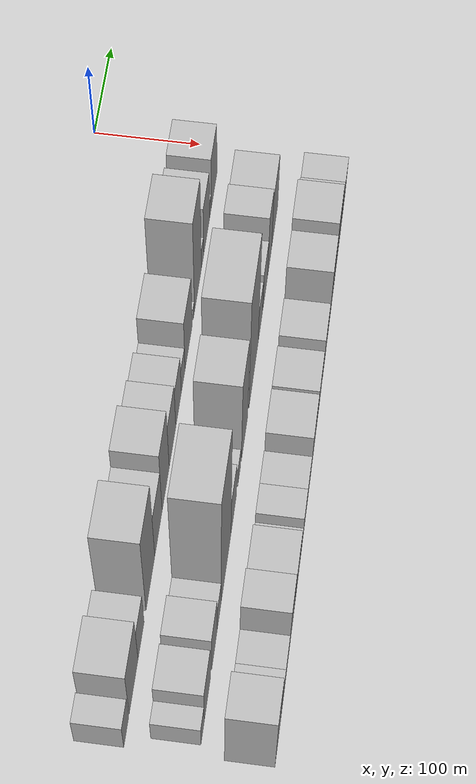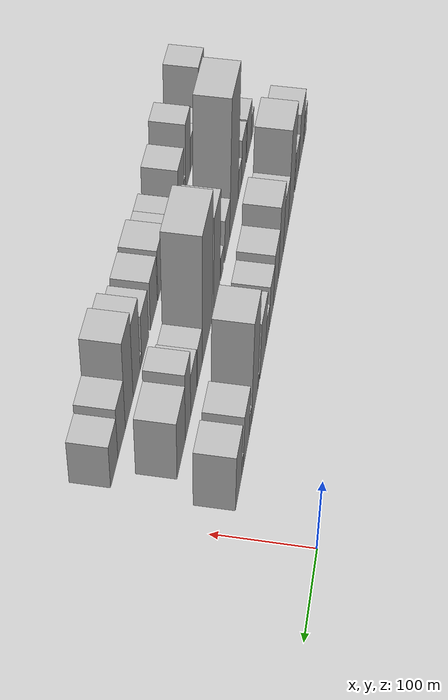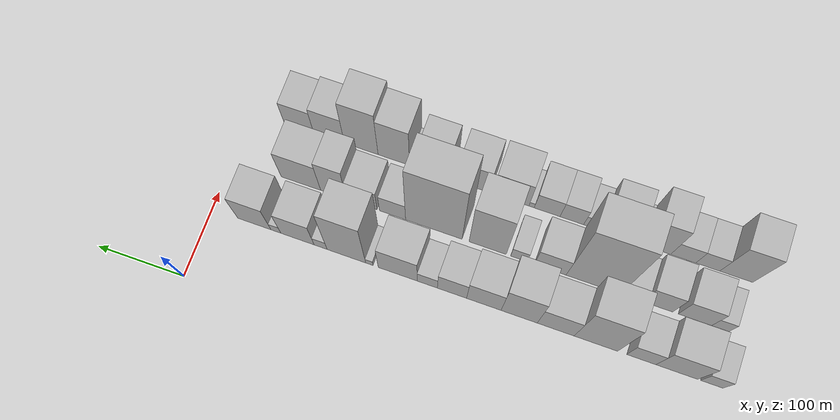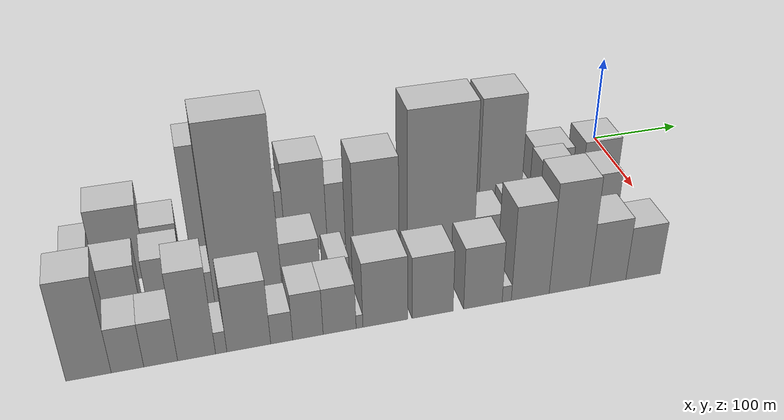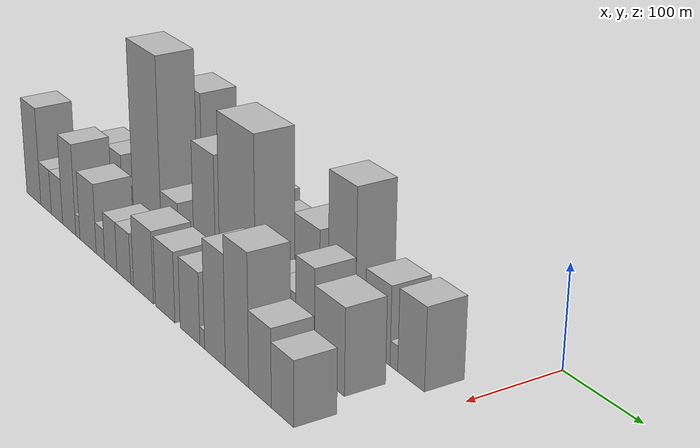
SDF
<sdf version="1.6">
 <world name="default">
  <model name="building_1">
   <static>1</static>
   <pose>100.0000 -567.7578 0 0.000000 0.000000 0.000000</pose>
   <link name="link">
    <pose>0 0 22.50 0 0 0</pose>
    <collision name="collision"><geometry><box><size>40.0000 24.4843 45.0000</size></box></geometry></collision>
    <visual name="visual">
     <cast_shadows>0</cast_shadows>
     <geometry><box><size>40.0000 24.4843 45.0000</size></box></geometry>
     <material>
      <script>
       <uri>model://HANNAS_wall/materials/scripts</uri>
       <uri>model://HANNAS_wall/materials/textures</uri>
       <name>vrc/HANNAS_wall</name>
      </script>
     </material>
    </visual>
   </link>
  </model>
  <model name="building_2">
   <static>1</static>
   <pose>100.0000 -529.5423 0 0.000000 0.000000 0.000000</pose>
   <link name="link">
    <pose>0 0 42.00 0 0 0</pose>
    <collision name="collision"><geometry><box><size>40.0000 45.9467 84.0000</size></box></geometry></collision>
    <visual name="visual">
     <cast_shadows>0</cast_shadows>
     <geometry><box><size>40.0000 45.9467 84.0000</size></box></geometry>
     <material>
      <script>
       <uri>model://HANNAS_wall/materials/scripts</uri>
       <uri>model://HANNAS_wall/materials/textures</uri>
       <name>vrc/HANNAS_wall</name>
      </script>
     </material>
    </visual>
   </link>
  </model>
  <model name="building_3">
   <static>1</static>
   <pose>100.0000 -490.5486 0 0.000000 0.000000 0.000000</pose>
   <link name="link">
    <pose>0 0 28.50 0 0 0</pose>
    <collision name="collision"><geometry><box><size>40.0000 32.0408 57.0000</size></box></geometry></collision>
    <visual name="visual">
     <cast_shadows>0</cast_shadows>
     <geometry><box><size>40.0000 32.0408 57.0000</size></box></geometry>
     <material>
      <script>
       <uri>model://HANNAS_wall/materials/scripts</uri>
       <uri>model://HANNAS_wall/materials/textures</uri>
       <name>vrc/HANNAS_wall</name>
      </script>
     </material>
    </visual>
   </link>
  </model>
  <model name="building_4">
   <static>1</static>
   <pose>100.0000 -440.3188 0 0.000000 0.000000 0.000000</pose>
   <link name="link">
    <pose>0 0 69.00 0 0 0</pose>
    <collision name="collision"><geometry><box><size>40.0000 48.4188 138.0000</size></box></geometry></collision>
    <visual name="visual">
     <cast_shadows>0</cast_shadows>
     <geometry><box><size>40.0000 48.4188 138.0000</size></box></geometry>
     <material>
      <script>
       <uri>model://HANNAS_wall/materials/scripts</uri>
       <uri>model://HANNAS_wall/materials/textures</uri>
       <name>vrc/HANNAS_wall</name>
      </script>
     </material>
    </visual>
   </link>
  </model>
  <model name="building_5">
   <static>1</static>
   <pose>100.0000 -395.4479 0 0.000000 0.000000 0.000000</pose>
   <link name="link">
    <pose>0 0 37.50 0 0 0</pose>
    <collision name="collision"><geometry><box><size>40.0000 41.3229 75.0000</size></box></geometry></collision>
    <visual name="visual">
     <cast_shadows>0</cast_shadows>
     <geometry><box><size>40.0000 41.3229 75.0000</size></box></geometry>
     <material>
      <script>
       <uri>model://HANNAS_wall/materials/scripts</uri>
       <uri>model://HANNAS_wall/materials/textures</uri>
       <name>vrc/HANNAS_wall</name>
      </script>
     </material>
    </visual>
   </link>
  </model>
  <model name="building_6">
   <static>1</static>
   <pose>100.0000 -354.4409 0 0.000000 0.000000 0.000000</pose>
   <link name="link">
    <pose>0 0 52.50 0 0 0</pose>
    <collision name="collision"><geometry><box><size>40.0000 40.6911 105.0000</size></box></geometry></collision>
    <visual name="visual">
     <cast_shadows>0</cast_shadows>
     <geometry><box><size>40.0000 40.6911 105.0000</size></box></geometry>
     <material>
      <script>
       <uri>model://HANNAS_wall/materials/scripts</uri>
       <uri>model://HANNAS_wall/materials/textures</uri>
       <name>vrc/HANNAS_wall</name>
      </script>
     </material>
    </visual>
   </link>
  </model>
  <model name="building_7">
   <static>1</static>
   <pose>100.0000 -314.5733 0 0.000000 0.000000 0.000000</pose>
   <link name="link">
    <pose>0 0 37.50 0 0 0</pose>
    <collision name="collision"><geometry><box><size>40.0000 39.0440 75.0000</size></box></geometry></collision>
    <visual name="visual">
     <cast_shadows>0</cast_shadows>
     <geometry><box><size>40.0000 39.0440 75.0000</size></box></geometry>
     <material>
      <script>
       <uri>model://HANNAS_wall/materials/scripts</uri>
       <uri>model://HANNAS_wall/materials/textures</uri>
       <name>vrc/HANNAS_wall</name>
      </script>
     </material>
    </visual>
   </link>
  </model>
  <model name="building_8">
   <static>1</static>
   <pose>100.0000 -278.4260 0 0.000000 0.000000 0.000000</pose>
   <link name="link">
    <pose>0 0 31.50 0 0 0</pose>
    <collision name="collision"><geometry><box><size>40.0000 33.2507 63.0000</size></box></geometry></collision>
    <visual name="visual">
     <cast_shadows>0</cast_shadows>
     <geometry><box><size>40.0000 33.2507 63.0000</size></box></geometry>
     <material>
      <script>
       <uri>model://HANNAS_wall/materials/scripts</uri>
       <uri>model://HANNAS_wall/materials/textures</uri>
       <name>vrc/HANNAS_wall</name>
      </script>
     </material>
    </visual>
   </link>
  </model>
  <model name="building_9">
   <static>1</static>
   <pose>100.0000 -250.2891 0 0.000000 0.000000 0.000000</pose>
   <link name="link">
    <pose>0 0 19.50 0 0 0</pose>
    <collision name="collision"><geometry><box><size>40.0000 23.0232 39.0000</size></box></geometry></collision>
    <visual name="visual">
     <cast_shadows>0</cast_shadows>
     <geometry><box><size>40.0000 23.0232 39.0000</size></box></geometry>
     <material>
      <script>
       <uri>model://HANNAS_wall/materials/scripts</uri>
       <uri>model://HANNAS_wall/materials/textures</uri>
       <name>vrc/HANNAS_wall</name>
      </script>
     </material>
    </visual>
   </link>
  </model>
  <model name="building_10">
   <static>1</static>
   <pose>100.0000 -216.4399 0 0.000000 0.000000 0.000000</pose>
   <link name="link">
    <pose>0 0 40.50 0 0 0</pose>
    <collision name="collision"><geometry><box><size>40.0000 44.6752 81.0000</size></box></geometry></collision>
    <visual name="visual">
     <cast_shadows>0</cast_shadows>
     <geometry><box><size>40.0000 44.6752 81.0000</size></box></geometry>
     <material>
      <script>
       <uri>model://HANNAS_wall/materials/scripts</uri>
       <uri>model://HANNAS_wall/materials/textures</uri>
       <name>vrc/HANNAS_wall</name>
      </script>
     </material>
    </visual>
   </link>
  </model>
  <model name="building_11">
   <static>1</static>
   <pose>100.0000 -183.8560 0 0.000000 0.000000 0.000000</pose>
   <link name="link">
    <pose>0 0 9.00 0 0 0</pose>
    <collision name="collision"><geometry><box><size>40.0000 8.4927 18.0000</size></box></geometry></collision>
    <visual name="visual">
     <cast_shadows>0</cast_shadows>
     <geometry><box><size>40.0000 8.4927 18.0000</size></box></geometry>
     <material>
      <script>
       <uri>model://HANNAS_wall/materials/scripts</uri>
       <uri>model://HANNAS_wall/materials/textures</uri>
       <name>vrc/HANNAS_wall</name>
      </script>
     </material>
    </visual>
   </link>
  </model>
  <model name="building_12">
   <static>1</static>
   <pose>100.0000 -157.3090 0 0.000000 0.000000 0.000000</pose>
   <link name="link">
    <pose>0 0 72.00 0 0 0</pose>
    <collision name="collision"><geometry><box><size>40.0000 44.6012 144.0000</size></box></geometry></collision>
    <visual name="visual">
     <cast_shadows>0</cast_shadows>
     <geometry><box><size>40.0000 44.6012 144.0000</size></box></geometry>
     <material>
      <script>
       <uri>model://HANNAS_wall/materials/scripts</uri>
       <uri>model://HANNAS_wall/materials/textures</uri>
       <name>vrc/HANNAS_wall</name>
      </script>
     </material>
    </visual>
   </link>
  </model>
  <model name="building_13">
   <static>1</static>
   <pose>100.0000 -127.4432 0 0.000000 0.000000 0.000000</pose>
   <link name="link">
    <pose>0 0 15.00 0 0 0</pose>
    <collision name="collision"><geometry><box><size>40.0000 15.1304 30.0000</size></box></geometry></collision>
    <visual name="visual">
     <cast_shadows>0</cast_shadows>
     <geometry><box><size>40.0000 15.1304 30.0000</size></box></geometry>
     <material>
      <script>
       <uri>model://HANNAS_wall/materials/scripts</uri>
       <uri>model://HANNAS_wall/materials/textures</uri>
       <name>vrc/HANNAS_wall</name>
      </script>
     </material>
    </visual>
   </link>
  </model>
  <model name="building_14">
   <static>1</static>
   <pose>100.0000 -100.4340 0 0.000000 0.000000 0.000000</pose>
   <link name="link">
    <pose>0 0 37.50 0 0 0</pose>
    <collision name="collision"><geometry><box><size>40.0000 38.8878 75.0000</size></box></geometry></collision>
    <visual name="visual">
     <cast_shadows>0</cast_shadows>
     <geometry><box><size>40.0000 38.8878 75.0000</size></box></geometry>
     <material>
      <script>
       <uri>model://HANNAS_wall/materials/scripts</uri>
       <uri>model://HANNAS_wall/materials/textures</uri>
       <name>vrc/HANNAS_wall</name>
      </script>
     </material>
    </visual>
   </link>
  </model>
  <model name="building_15">
   <static>1</static>
   <pose>100.0000 -75.2105 0 0.000000 0.000000 0.000000</pose>
   <link name="link">
    <pose>0 0 12.00 0 0 0</pose>
    <collision name="collision"><geometry><box><size>40.0000 11.5592 24.0000</size></box></geometry></collision>
    <visual name="visual">
     <cast_shadows>0</cast_shadows>
     <geometry><box><size>40.0000 11.5592 24.0000</size></box></geometry>
     <material>
      <script>
       <uri>model://HANNAS_wall/materials/scripts</uri>
       <uri>model://HANNAS_wall/materials/textures</uri>
       <name>vrc/HANNAS_wall</name>
      </script>
     </material>
    </visual>
   </link>
  </model>
  <model name="building_16">
   <static>1</static>
   <pose>100.0000 -49.8729 0 0.000000 0.000000 0.000000</pose>
   <link name="link">
    <pose>0 0 39.00 0 0 0</pose>
    <collision name="collision"><geometry><box><size>40.0000 39.1161 78.0000</size></box></geometry></collision>
    <visual name="visual">
     <cast_shadows>0</cast_shadows>
     <geometry><box><size>40.0000 39.1161 78.0000</size></box></geometry>
     <material>
      <script>
       <uri>model://HANNAS_wall/materials/scripts</uri>
       <uri>model://HANNAS_wall/materials/textures</uri>
       <name>vrc/HANNAS_wall</name>
      </script>
     </material>
    </visual>
   </link>
  </model>
  <model name="building_33">
   <static>1</static>
   <pose>160.0000 -560.4927 0 0.000000 0.000000 0.000000</pose>
   <link name="link">
    <pose>0 0 18.00 0 0 0</pose>
    <collision name="collision"><geometry><box><size>40.0000 19.0145 36.0000</size></box></geometry></collision>
    <visual name="visual">
     <cast_shadows>0</cast_shadows>
     <geometry><box><size>40.0000 19.0145 36.0000</size></box></geometry>
     <material>
      <script>
       <uri>model://HANNAS_wall/materials/scripts</uri>
       <uri>model://HANNAS_wall/materials/textures</uri>
       <name>vrc/HANNAS_wall</name>
      </script>
     </material>
    </visual>
   </link>
  </model>
  <model name="building_34">
   <static>1</static>
   <pose>160.0000 -532.4048 0 0.000000 0.000000 0.000000</pose>
   <link name="link">
    <pose>0 0 31.50 0 0 0</pose>
    <collision name="collision"><geometry><box><size>40.0000 37.1614 63.0000</size></box></geometry></collision>
    <visual name="visual">
     <cast_shadows>0</cast_shadows>
     <geometry><box><size>40.0000 37.1614 63.0000</size></box></geometry>
     <material>
      <script>
       <uri>model://HANNAS_wall/materials/scripts</uri>
       <uri>model://HANNAS_wall/materials/textures</uri>
       <name>vrc/HANNAS_wall</name>
      </script>
     </material>
    </visual>
   </link>
  </model>
  <model name="building_35">
   <static>1</static>
   <pose>160.0000 -491.1633 0 0.000000 0.000000 0.000000</pose>
   <link name="link">
    <pose>0 0 33.00 0 0 0</pose>
    <collision name="collision"><geometry><box><size>40.0000 33.3217 66.0000</size></box></geometry></collision>
    <visual name="visual">
     <cast_shadows>0</cast_shadows>
     <geometry><box><size>40.0000 33.3217 66.0000</size></box></geometry>
     <material>
      <script>
       <uri>model://HANNAS_wall/materials/scripts</uri>
       <uri>model://HANNAS_wall/materials/textures</uri>
       <name>vrc/HANNAS_wall</name>
      </script>
     </material>
    </visual>
   </link>
  </model>
  <model name="building_36">
   <static>1</static>
   <pose>160.0000 -461.9633 0 0.000000 0.000000 0.000000</pose>
   <link name="link">
    <pose>0 0 21.00 0 0 0</pose>
    <collision name="collision"><geometry><box><size>40.0000 25.0782 42.0000</size></box></geometry></collision>
    <visual name="visual">
     <cast_shadows>0</cast_shadows>
     <geometry><box><size>40.0000 25.0782 42.0000</size></box></geometry>
     <material>
      <script>
       <uri>model://HANNAS_wall/materials/scripts</uri>
       <uri>model://HANNAS_wall/materials/textures</uri>
       <name>vrc/HANNAS_wall</name>
      </script>
     </material>
    </visual>
   </link>
  </model>
  <model name="building_37">
   <static>1</static>
   <pose>160.0000 -418.6511 0 0.000000 0.000000 0.000000</pose>
   <link name="link">
    <pose>0 0 97.50 0 0 0</pose>
    <collision name="collision"><geometry><box><size>40.0000 61.5463 195.0000</size></box></geometry></collision>
    <visual name="visual">
     <cast_shadows>0</cast_shadows>
     <geometry><box><size>40.0000 61.5463 195.0000</size></box></geometry>
     <material>
      <script>
       <uri>model://HANNAS_wall/materials/scripts</uri>
       <uri>model://HANNAS_wall/materials/textures</uri>
       <name>vrc/HANNAS_wall</name>
      </script>
     </material>
    </visual>
   </link>
  </model>
  <model name="building_38">
   <static>1</static>
   <pose>160.0000 -369.9380 0 0.000000 0.000000 0.000000</pose>
   <link name="link">
    <pose>0 0 30.00 0 0 0</pose>
    <collision name="collision"><geometry><box><size>40.0000 35.8798 60.0000</size></box></geometry></collision>
    <visual name="visual">
     <cast_shadows>0</cast_shadows>
     <geometry><box><size>40.0000 35.8798 60.0000</size></box></geometry>
     <material>
      <script>
       <uri>model://HANNAS_wall/materials/scripts</uri>
       <uri>model://HANNAS_wall/materials/textures</uri>
       <name>vrc/HANNAS_wall</name>
      </script>
     </material>
    </visual>
   </link>
  </model>
  <model name="building_39">
   <static>1</static>
   <pose>160.0000 -334.4406 0 0.000000 0.000000 0.000000</pose>
   <link name="link">
    <pose>0 0 16.50 0 0 0</pose>
    <collision name="collision"><geometry><box><size>40.0000 19.1148 33.0000</size></box></geometry></collision>
    <visual name="visual">
     <cast_shadows>0</cast_shadows>
     <geometry><box><size>40.0000 19.1148 33.0000</size></box></geometry>
     <material>
      <script>
       <uri>model://HANNAS_wall/materials/scripts</uri>
       <uri>model://HANNAS_wall/materials/textures</uri>
       <name>vrc/HANNAS_wall</name>
      </script>
     </material>
    </visual>
   </link>
  </model>
  <model name="building_40">
   <static>1</static>
   <pose>160.0000 -298.5327 0 0.000000 0.000000 0.000000</pose>
   <link name="link">
    <pose>0 0 67.50 0 0 0</pose>
    <collision name="collision"><geometry><box><size>40.0000 42.7010 135.0000</size></box></geometry></collision>
    <visual name="visual">
     <cast_shadows>0</cast_shadows>
     <geometry><box><size>40.0000 42.7010 135.0000</size></box></geometry>
     <material>
      <script>
       <uri>model://HANNAS_wall/materials/scripts</uri>
       <uri>model://HANNAS_wall/materials/textures</uri>
       <name>vrc/HANNAS_wall</name>
      </script>
     </material>
    </visual>
   </link>
  </model>
  <model name="building_41">
   <static>1</static>
   <pose>160.0000 -236.5103 0 0.000000 0.000000 0.000000</pose>
   <link name="link">
    <pose>0 0 90.00 0 0 0</pose>
    <collision name="collision"><geometry><box><size>40.0000 65.3439 180.0000</size></box></geometry></collision>
    <visual name="visual">
     <cast_shadows>0</cast_shadows>
     <geometry><box><size>40.0000 65.3439 180.0000</size></box></geometry>
     <material>
      <script>
       <uri>model://HANNAS_wall/materials/scripts</uri>
       <uri>model://HANNAS_wall/materials/textures</uri>
       <name>vrc/HANNAS_wall</name>
      </script>
     </material>
    </visual>
   </link>
  </model>
  <model name="building_42">
   <static>1</static>
   <pose>160.0000 -188.6689 0 0.000000 0.000000 0.000000</pose>
   <link name="link">
    <pose>0 0 27.00 0 0 0</pose>
    <collision name="collision"><geometry><box><size>40.0000 30.3389 54.0000</size></box></geometry></collision>
    <visual name="visual">
     <cast_shadows>0</cast_shadows>
     <geometry><box><size>40.0000 30.3389 54.0000</size></box></geometry>
     <material>
      <script>
       <uri>model://HANNAS_wall/materials/scripts</uri>
       <uri>model://HANNAS_wall/materials/textures</uri>
       <name>vrc/HANNAS_wall</name>
      </script>
     </material>
    </visual>
   </link>
  </model>
  <model name="building_43">
   <static>1</static>
   <pose>160.0000 -152.7673 0 0.000000 0.000000 0.000000</pose>
   <link name="link">
    <pose>0 0 30.00 0 0 0</pose>
    <collision name="collision"><geometry><box><size>40.0000 35.4643 60.0000</size></box></geometry></collision>
    <visual name="visual">
     <cast_shadows>0</cast_shadows>
     <geometry><box><size>40.0000 35.4643 60.0000</size></box></geometry>
     <material>
      <script>
       <uri>model://HANNAS_wall/materials/scripts</uri>
       <uri>model://HANNAS_wall/materials/textures</uri>
       <name>vrc/HANNAS_wall</name>
      </script>
     </material>
    </visual>
   </link>
  </model>
  <model name="building_44">
   <static>1</static>
   <pose>160.0000 -119.7483 0 0.000000 0.000000 0.000000</pose>
   <link name="link">
    <pose>0 0 48.00 0 0 0</pose>
    <collision name="collision"><geometry><box><size>40.0000 30.5737 96.0000</size></box></geometry></collision>
    <visual name="visual">
     <cast_shadows>0</cast_shadows>
     <geometry><box><size>40.0000 30.5737 96.0000</size></box></geometry>
     <material>
      <script>
       <uri>model://HANNAS_wall/materials/scripts</uri>
       <uri>model://HANNAS_wall/materials/textures</uri>
       <name>vrc/HANNAS_wall</name>
      </script>
     </material>
    </visual>
   </link>
  </model>
  <model name="building_45">
   <static>1</static>
   <pose>160.0000 -81.1120 0 0.000000 0.000000 0.000000</pose>
   <link name="link">
    <pose>0 0 40.50 0 0 0</pose>
    <collision name="collision"><geometry><box><size>40.0000 46.6989 81.0000</size></box></geometry></collision>
    <visual name="visual">
     <cast_shadows>0</cast_shadows>
     <geometry><box><size>40.0000 46.6989 81.0000</size></box></geometry>
     <material>
      <script>
       <uri>model://HANNAS_wall/materials/scripts</uri>
       <uri>model://HANNAS_wall/materials/textures</uri>
       <name>vrc/HANNAS_wall</name>
      </script>
     </material>
    </visual>
   </link>
  </model>
  <model name="building_61">
   <static>1</static>
   <pose>220.0000 -561.5580 0 0.000000 0.000000 0.000000</pose>
   <link name="link">
    <pose>0 0 52.50 0 0 0</pose>
    <collision name="collision"><geometry><box><size>40.0000 36.8841 105.0000</size></box></geometry></collision>
    <visual name="visual">
     <cast_shadows>0</cast_shadows>
     <geometry><box><size>40.0000 36.8841 105.0000</size></box></geometry>
     <material>
      <script>
       <uri>model://HANNAS_wall/materials/scripts</uri>
       <uri>model://HANNAS_wall/materials/textures</uri>
       <name>vrc/HANNAS_wall</name>
      </script>
     </material>
    </visual>
   </link>
  </model>
  <model name="building_62">
   <static>1</static>
   <pose>220.0000 -529.6934 0 0.000000 0.000000 0.000000</pose>
   <link name="link">
    <pose>0 0 24.00 0 0 0</pose>
    <collision name="collision"><geometry><box><size>40.0000 26.8450 48.0000</size></box></geometry></collision>
    <visual name="visual">
     <cast_shadows>0</cast_shadows>
     <geometry><box><size>40.0000 26.8450 48.0000</size></box></geometry>
     <material>
      <script>
       <uri>model://HANNAS_wall/materials/scripts</uri>
       <uri>model://HANNAS_wall/materials/textures</uri>
       <name>vrc/HANNAS_wall</name>
      </script>
     </material>
    </visual>
   </link>
  </model>
  <model name="building_63">
   <static>1</static>
   <pose>220.0000 -502.1385 0 0.000000 0.000000 0.000000</pose>
   <link name="link">
    <pose>0 0 24.00 0 0 0</pose>
    <collision name="collision"><geometry><box><size>40.0000 28.2648 48.0000</size></box></geometry></collision>
    <visual name="visual">
     <cast_shadows>0</cast_shadows>
     <geometry><box><size>40.0000 28.2648 48.0000</size></box></geometry>
     <material>
      <script>
       <uri>model://HANNAS_wall/materials/scripts</uri>
       <uri>model://HANNAS_wall/materials/textures</uri>
       <name>vrc/HANNAS_wall</name>
      </script>
     </material>
    </visual>
   </link>
  </model>
  <model name="building_64">
   <static>1</static>
   <pose>220.0000 -471.9221 0 0.000000 0.000000 0.000000</pose>
   <link name="link">
    <pose>0 0 48.00 0 0 0</pose>
    <collision name="collision"><geometry><box><size>40.0000 32.1681 96.0000</size></box></geometry></collision>
    <visual name="visual">
     <cast_shadows>0</cast_shadows>
     <geometry><box><size>40.0000 32.1681 96.0000</size></box></geometry>
     <material>
      <script>
       <uri>model://HANNAS_wall/materials/scripts</uri>
       <uri>model://HANNAS_wall/materials/textures</uri>
       <name>vrc/HANNAS_wall</name>
      </script>
     </material>
    </visual>
   </link>
  </model>
  <model name="building_65">
   <static>1</static>
   <pose>220.0000 -450.9935 0 0.000000 0.000000 0.000000</pose>
   <link name="link">
    <pose>0 0 12.00 0 0 0</pose>
    <collision name="collision"><geometry><box><size>40.0000 9.6890 24.0000</size></box></geometry></collision>
    <visual name="visual">
     <cast_shadows>0</cast_shadows>
     <geometry><box><size>40.0000 9.6890 24.0000</size></box></geometry>
     <material>
      <script>
       <uri>model://HANNAS_wall/materials/scripts</uri>
       <uri>model://HANNAS_wall/materials/textures</uri>
       <name>vrc/HANNAS_wall</name>
      </script>
     </material>
    </visual>
   </link>
  </model>
  <model name="building_66">
   <static>1</static>
   <pose>220.0000 -427.1798 0 0.000000 0.000000 0.000000</pose>
   <link name="link">
    <pose>0 0 36.00 0 0 0</pose>
    <collision name="collision"><geometry><box><size>40.0000 37.9386 72.0000</size></box></geometry></collision>
    <visual name="visual">
     <cast_shadows>0</cast_shadows>
     <geometry><box><size>40.0000 37.9386 72.0000</size></box></geometry>
     <material>
      <script>
       <uri>model://HANNAS_wall/materials/scripts</uri>
       <uri>model://HANNAS_wall/materials/textures</uri>
       <name>vrc/HANNAS_wall</name>
      </script>
     </material>
    </visual>
   </link>
  </model>
  <model name="building_67">
   <static>1</static>
   <pose>220.0000 -398.5750 0 0.000000 0.000000 0.000000</pose>
   <link name="link">
    <pose>0 0 16.50 0 0 0</pose>
    <collision name="collision"><geometry><box><size>40.0000 19.2710 33.0000</size></box></geometry></collision>
    <visual name="visual">
     <cast_shadows>0</cast_shadows>
     <geometry><box><size>40.0000 19.2710 33.0000</size></box></geometry>
     <material>
      <script>
       <uri>model://HANNAS_wall/materials/scripts</uri>
       <uri>model://HANNAS_wall/materials/textures</uri>
       <name>vrc/HANNAS_wall</name>
      </script>
     </material>
    </visual>
   </link>
  </model>
  <model name="building_68">
   <static>1</static>
   <pose>220.0000 -375.4050 0 0.000000 0.000000 0.000000</pose>
   <link name="link">
    <pose>0 0 25.50 0 0 0</pose>
    <collision name="collision"><geometry><box><size>40.0000 27.0689 51.0000</size></box></geometry></collision>
    <visual name="visual">
     <cast_shadows>0</cast_shadows>
     <geometry><box><size>40.0000 27.0689 51.0000</size></box></geometry>
     <material>
      <script>
       <uri>model://HANNAS_wall/materials/scripts</uri>
       <uri>model://HANNAS_wall/materials/textures</uri>
       <name>vrc/HANNAS_wall</name>
      </script>
     </material>
    </visual>
   </link>
  </model>
  <model name="building_69">
   <static>1</static>
   <pose>220.0000 -347.0296 0 0.000000 0.000000 0.000000</pose>
   <link name="link">
    <pose>0 0 25.50 0 0 0</pose>
    <collision name="collision"><geometry><box><size>40.0000 29.6819 51.0000</size></box></geometry></collision>
    <visual name="visual">
     <cast_shadows>0</cast_shadows>
     <geometry><box><size>40.0000 29.6819 51.0000</size></box></geometry>
     <material>
      <script>
       <uri>model://HANNAS_wall/materials/scripts</uri>
       <uri>model://HANNAS_wall/materials/textures</uri>
       <name>vrc/HANNAS_wall</name>
      </script>
     </material>
    </visual>
   </link>
  </model>
  <model name="building_70">
   <static>1</static>
   <pose>220.0000 -329.1133 0 0.000000 0.000000 0.000000</pose>
   <link name="link">
    <pose>0 0 7.50 0 0 0</pose>
    <collision name="collision"><geometry><box><size>40.0000 6.1507 15.0000</size></box></geometry></collision>
    <visual name="visual">
     <cast_shadows>0</cast_shadows>
     <geometry><box><size>40.0000 6.1507 15.0000</size></box></geometry>
     <material>
      <script>
       <uri>model://HANNAS_wall/materials/scripts</uri>
       <uri>model://HANNAS_wall/materials/textures</uri>
       <name>vrc/HANNAS_wall</name>
      </script>
     </material>
    </visual>
   </link>
  </model>
  <model name="building_71">
   <static>1</static>
   <pose>220.0000 -305.4912 0 0.000000 0.000000 0.000000</pose>
   <link name="link">
    <pose>0 0 36.00 0 0 0</pose>
    <collision name="collision"><geometry><box><size>40.0000 41.0936 72.0000</size></box></geometry></collision>
    <visual name="visual">
     <cast_shadows>0</cast_shadows>
     <geometry><box><size>40.0000 41.0936 72.0000</size></box></geometry>
     <material>
      <script>
       <uri>model://HANNAS_wall/materials/scripts</uri>
       <uri>model://HANNAS_wall/materials/textures</uri>
       <name>vrc/HANNAS_wall</name>
      </script>
     </material>
    </visual>
   </link>
  </model>
  <model name="building_72">
   <static>1</static>
   <pose>220.0000 -261.7134 0 0.000000 0.000000 0.000000</pose>
   <link name="link">
    <pose>0 0 34.50 0 0 0</pose>
    <collision name="collision"><geometry><box><size>40.0000 38.4619 69.0000</size></box></geometry></collision>
    <visual name="visual">
     <cast_shadows>0</cast_shadows>
     <geometry><box><size>40.0000 38.4619 69.0000</size></box></geometry>
     <material>
      <script>
       <uri>model://HANNAS_wall/materials/scripts</uri>
       <uri>model://HANNAS_wall/materials/textures</uri>
       <name>vrc/HANNAS_wall</name>
      </script>
     </material>
    </visual>
   </link>
  </model>
  <model name="building_73">
   <static>1</static>
   <pose>220.0000 -214.0534 0 0.000000 0.000000 0.000000</pose>
   <link name="link">
    <pose>0 0 34.50 0 0 0</pose>
    <collision name="collision"><geometry><box><size>40.0000 36.8581 69.0000</size></box></geometry></collision>
    <visual name="visual">
     <cast_shadows>0</cast_shadows>
     <geometry><box><size>40.0000 36.8581 69.0000</size></box></geometry>
     <material>
      <script>
       <uri>model://HANNAS_wall/materials/scripts</uri>
       <uri>model://HANNAS_wall/materials/textures</uri>
       <name>vrc/HANNAS_wall</name>
      </script>
     </material>
    </visual>
   </link>
  </model>
  <model name="building_74">
   <static>1</static>
   <pose>220.0000 -191.1840 0 0.000000 0.000000 0.000000</pose>
   <link name="link">
    <pose>0 0 9.00 0 0 0</pose>
    <collision name="collision"><geometry><box><size>40.0000 8.8808 18.0000</size></box></geometry></collision>
    <visual name="visual">
     <cast_shadows>0</cast_shadows>
     <geometry><box><size>40.0000 8.8808 18.0000</size></box></geometry>
     <material>
      <script>
       <uri>model://HANNAS_wall/materials/scripts</uri>
       <uri>model://HANNAS_wall/materials/textures</uri>
       <name>vrc/HANNAS_wall</name>
      </script>
     </material>
    </visual>
   </link>
  </model>
  <model name="building_75">
   <static>1</static>
   <pose>220.0000 -168.2253 0 0.000000 0.000000 0.000000</pose>
   <link name="link">
    <pose>0 0 52.50 0 0 0</pose>
    <collision name="collision"><geometry><box><size>40.0000 37.0366 105.0000</size></box></geometry></collision>
    <visual name="visual">
     <cast_shadows>0</cast_shadows>
     <geometry><box><size>40.0000 37.0366 105.0000</size></box></geometry>
     <material>
      <script>
       <uri>model://HANNAS_wall/materials/scripts</uri>
       <uri>model://HANNAS_wall/materials/textures</uri>
       <name>vrc/HANNAS_wall</name>
      </script>
     </material>
    </visual>
   </link>
  </model>
  <model name="building_76">
   <static>1</static>
   <pose>220.0000 -129.7226 0 0.000000 0.000000 0.000000</pose>
   <link name="link">
    <pose>0 0 61.50 0 0 0</pose>
    <collision name="collision"><geometry><box><size>40.0000 39.9689 123.0000</size></box></geometry></collision>
    <visual name="visual">
     <cast_shadows>0</cast_shadows>
     <geometry><box><size>40.0000 39.9689 123.0000</size></box></geometry>
     <material>
      <script>
       <uri>model://HANNAS_wall/materials/scripts</uri>
       <uri>model://HANNAS_wall/materials/textures</uri>
       <name>vrc/HANNAS_wall</name>
      </script>
     </material>
    </visual>
   </link>
  </model>
  <model name="building_77">
   <static>1</static>
   <pose>220.0000 -91.2908 0 0.000000 0.000000 0.000000</pose>
   <link name="link">
    <pose>0 0 36.00 0 0 0</pose>
    <collision name="collision"><geometry><box><size>40.0000 36.8947 72.0000</size></box></geometry></collision>
    <visual name="visual">
     <cast_shadows>0</cast_shadows>
     <geometry><box><size>40.0000 36.8947 72.0000</size></box></geometry>
     <material>
      <script>
       <uri>model://HANNAS_wall/materials/scripts</uri>
       <uri>model://HANNAS_wall/materials/textures</uri>
       <name>vrc/HANNAS_wall</name>
      </script>
     </material>
    </visual>
   </link>
  </model>
  <model name="building_78">
   <static>1</static>
   <pose>220.0000 -55.1702 0 0.000000 0.000000 0.000000</pose>
   <link name="link">
    <pose>0 0 30.00 0 0 0</pose>
    <collision name="collision"><geometry><box><size>40.0000 35.3464 60.0000</size></box></geometry></collision>
    <visual name="visual">
     <cast_shadows>0</cast_shadows>
     <geometry><box><size>40.0000 35.3464 60.0000</size></box></geometry>
     <material>
      <script>
       <uri>model://HANNAS_wall/materials/scripts</uri>
       <uri>model://HANNAS_wall/materials/textures</uri>
       <name>vrc/HANNAS_wall</name>
      </script>
     </material>
    </visual>
   </link>
  </model>
 </world>
</sdf>
